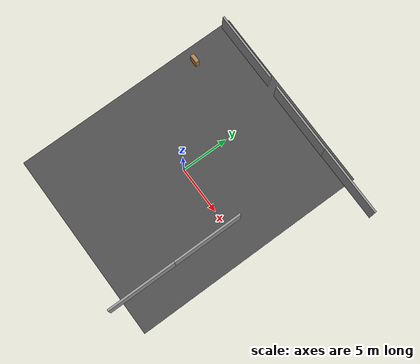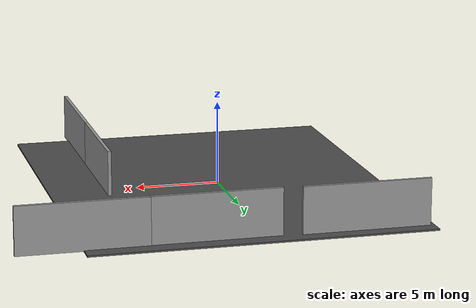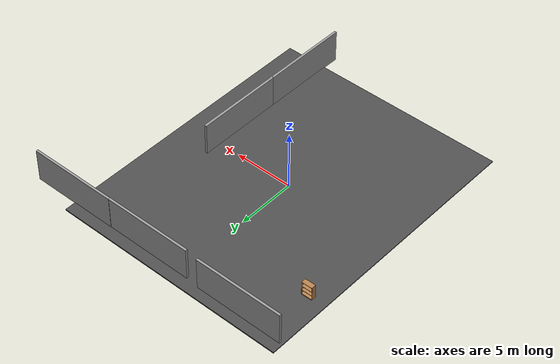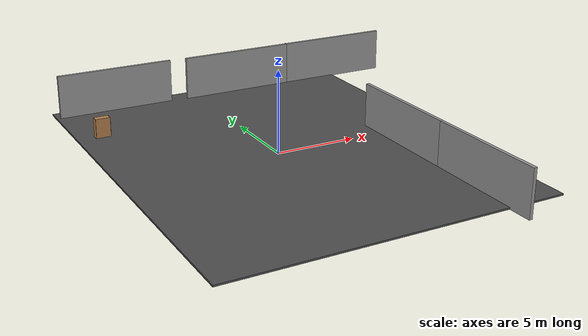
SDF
<sdf version="1.6">
 <world name="default">
  <gravity>0 0 -9.8</gravity>
  <magnetic_field>6e-06 2.3e-05 -4.2e-05</magnetic_field>
  <atmosphere type="adiabatic"/>
  <physics name="default_physics" default="0" type="ode">
   <max_step_size>0.001</max_step_size>
   <real_time_factor>1</real_time_factor>
   <real_time_update_rate>1000</real_time_update_rate>
  </physics>
  <scene><ambient>0.4 0.4 0.4 1</ambient><background>0.7 0.7 0.7 1</background><shadows>1</shadows></scene>
  <spherical_coordinates>
   <surface_model>EARTH_WGS84</surface_model>
   <latitude_deg>0</latitude_deg>
   <longitude_deg>0</longitude_deg>
   <elevation>0</elevation>
   <heading_deg>0</heading_deg>
  </spherical_coordinates>
  <model name="asphalt_plane">
   <static>1</static>
   <link name="link">
    <collision name="collision"><geometry><box><size>20 24.57 0.1</size></box></geometry></collision>
    <visual name="visual">
     <cast_shadows>0</cast_shadows>
     <geometry><box><size>20 24.57 0.1</size></box></geometry>
     <material>
      <script>
       <uri>model://asphalt_plane/materials/scripts</uri>
       <uri>model://asphalt_plane/materials/textures</uri>
       <name>vrc/asphalt</name>
      </script>
     </material>
    </visual>
   </link>
   <pose>0.384073 0.26359 0 0 -0 0</pose>
  </model>
  <model name="grey_wall">
   <static>1</static>
   <link name="link">
    <pose>0 0 1.4 0 -0 0</pose>
    <collision name="collision"><geometry><box><size>7.5 0.2 2.8</size></box></geometry></collision>
    <visual name="visual">
     <cast_shadows>0</cast_shadows>
     <geometry><box><size>7.5 0.2 2.8</size></box></geometry>
     <material>
      <script>
       <uri>model://grey_wall/materials/scripts</uri>
       <uri>model://grey_wall/materials/textures</uri>
       <name>vrc/grey_wall</name>
      </script>
     </material>
    </visual>
   </link>
   <pose>-5.63183 11.6078 0 0 -0 0</pose>
  </model>
  <model name="grey_wall_clone">
   <static>1</static>
   <link name="link">
    <pose>0 0 1.4 0 -0 0</pose>
    <collision name="collision"><geometry><box><size>7.5 0.2 2.8</size></box></geometry></collision>
    <visual name="visual">
     <cast_shadows>0</cast_shadows>
     <geometry><box><size>7.5 0.2 2.8</size></box></geometry>
     <material>
      <script>
       <uri>model://grey_wall/materials/scripts</uri>
       <uri>model://grey_wall/materials/textures</uri>
       <name>vrc/grey_wall</name>
      </script>
     </material>
    </visual>
   </link>
   <pose>2.95671 11.4917 0 0 -0 0</pose>
  </model>
  <model name="grey_wall_clone_0">
   <static>1</static>
   <link name="link">
    <pose>0 0 1.4 0 -0 0</pose>
    <collision name="collision"><geometry><box><size>7.5 0.2 2.8</size></box></geometry></collision>
    <visual name="visual">
     <cast_shadows>0</cast_shadows>
     <geometry><box><size>7.5 0.2 2.8</size></box></geometry>
     <material>
      <script>
       <uri>model://grey_wall/materials/scripts</uri>
       <uri>model://grey_wall/materials/textures</uri>
       <name>vrc/grey_wall</name>
      </script>
     </material>
    </visual>
   </link>
   <pose>10.4161 11.5119 0 0 -0 0</pose>
  </model>
  <model name="grey_wall_clone_0_clone">
   <static>1</static>
   <link name="link">
    <pose>0 0 1.4 0 -0 0</pose>
    <collision name="collision"><geometry><box><size>7.5 0.2 2.8</size></box></geometry></collision>
    <visual name="visual">
     <cast_shadows>0</cast_shadows>
     <geometry><box><size>7.5 0.2 2.8</size></box></geometry>
     <material>
      <script>
       <uri>model://grey_wall/materials/scripts</uri>
       <uri>model://grey_wall/materials/textures</uri>
       <name>vrc/grey_wall</name>
      </script>
     </material>
    </visual>
   </link>
   <pose>6.92346 -2.30034 -0.05478 0 0 -1.57273</pose>
  </model>
  <model name="grey_wall_clone_0_clone_clone">
   <static>1</static>
   <link name="link">
    <pose>0 0 1.4 0 -0 0</pose>
    <collision name="collision"><geometry><box><size>7.5 0.2 2.8</size></box></geometry></collision>
    <visual name="visual">
     <cast_shadows>0</cast_shadows>
     <geometry><box><size>7.5 0.2 2.8</size></box></geometry>
     <material>
      <script>
       <uri>model://grey_wall/materials/scripts</uri>
       <uri>model://grey_wall/materials/textures</uri>
       <name>vrc/grey_wall</name>
      </script>
     </material>
    </visual>
   </link>
   <pose>6.90602 -9.69741 -0.05478 0 0 -1.57273</pose>
  </model>
  <model name="bookshelf">
   <static>1</static>
   <link name="link">
    <inertial><mass>1</mass></inertial>
    <collision name="back">
     <pose>0 0.005 0.6 0 -0 0</pose>
     <geometry><box><size>0.9 0.01 1.2</size></box></geometry>
    </collision>
    <visual name="visual1">
     <pose>0 0.005 0.6 0 -0 0</pose>
     <geometry><box><size>0.9 0.01 1.2</size></box></geometry>
     <material>
      <script><uri>file://media/materials/scripts/gazebo.material</uri><name>Gazebo/Wood</name></script>
     </material>
    </visual>
    <collision name="left_side">
     <pose>0.45 -0.195 0.6 0 -0 0</pose>
     <geometry><box><size>0.02 0.4 1.2</size></box></geometry>
    </collision>
    <visual name="visual2">
     <pose>0.45 -0.195 0.6 0 -0 0</pose>
     <geometry><box><size>0.02 0.4 1.2</size></box></geometry>
     <material>
      <script><uri>file://media/materials/scripts/gazebo.material</uri><name>Gazebo/Wood</name></script>
     </material>
    </visual>
    <collision name="right_side">
     <pose>-0.45 -0.195 0.6 0 -0 0</pose>
     <geometry><box><size>0.02 0.4 1.2</size></box></geometry>
    </collision>
    <visual name="visual3">
     <pose>-0.45 -0.195 0.6 0 -0 0</pose>
     <geometry><box><size>0.02 0.4 1.2</size></box></geometry>
     <material>
      <script><uri>file://media/materials/scripts/gazebo.material</uri><name>Gazebo/Wood</name></script>
     </material>
    </visual>
    <collision name="bottom">
     <pose>0 -0.195 0.03 0 -0 0</pose>
     <geometry><box><size>0.88 0.4 0.06</size></box></geometry>
    </collision>
    <visual name="visual4">
     <pose>0 -0.195 0.03 0 -0 0</pose>
     <geometry><box><size>0.88 0.4 0.06</size></box></geometry>
     <material>
      <script><uri>file://media/materials/scripts/gazebo.material</uri><name>Gazebo/Wood</name></script>
     </material>
    </visual>
    <collision name="top">
     <pose>0 -0.195 1.19 0 -0 0</pose>
     <geometry><box><size>0.88 0.4 0.02</size></box></geometry>
    </collision>
    <visual name="visual5">
     <pose>0 -0.195 1.19 0 -0 0</pose>
     <geometry><box><size>0.88 0.4 0.02</size></box></geometry>
     <material>
      <script><uri>file://media/materials/scripts/gazebo.material</uri><name>Gazebo/Wood</name></script>
     </material>
    </visual>
    <collision name="low_shelf">
     <pose>0 -0.195 0.43 0 -0 0</pose>
     <geometry><box><size>0.88 0.4 0.02</size></box></geometry>
    </collision>
    <visual name="visual6">
     <pose>0 -0.195 0.43 0 -0 0</pose>
     <geometry><box><size>0.88 0.4 0.02</size></box></geometry>
     <material>
      <script><uri>file://media/materials/scripts/gazebo.material</uri><name>Gazebo/Wood</name></script>
     </material>
    </visual>
    <collision name="high_shelf">
     <pose>0 -0.195 0.8 0 -0 0</pose>
     <geometry><box><size>0.88 0.4 0.02</size></box></geometry>
    </collision>
    <visual name="visual7">
     <pose>0 -0.195 0.8 0 -0 0</pose>
     <geometry><box><size>0.88 0.4 0.02</size></box></geometry>
     <material>
      <script><uri>file://media/materials/scripts/gazebo.material</uri><name>Gazebo/Wood</name></script>
     </material>
    </visual>
   </link>
   <pose>-8.07112 7.0386 0.073 0 0 -3.12722</pose>
  </model>
 </world>
</sdf>
